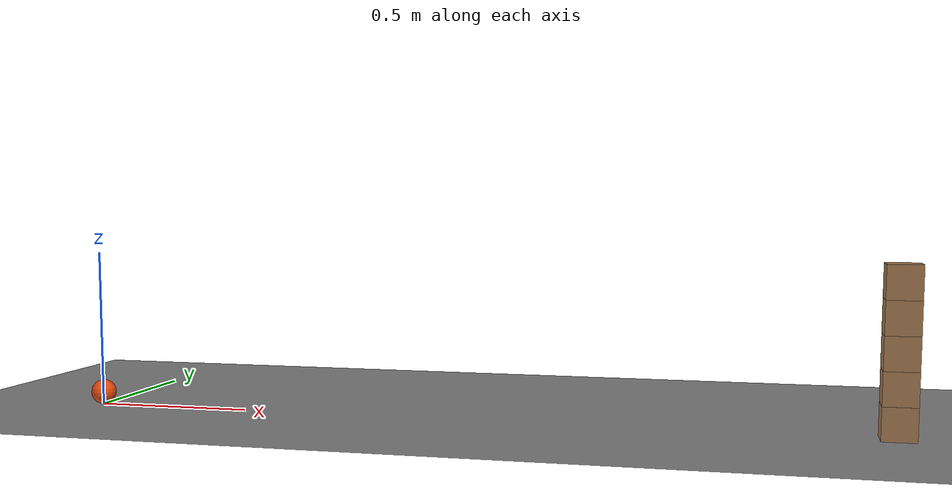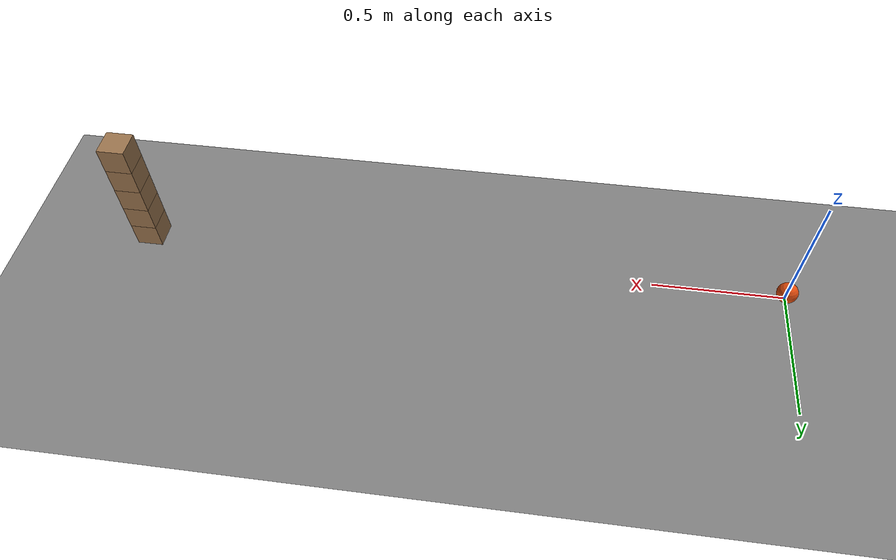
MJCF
<mujoco model="toppling_stack">
  <compiler angle="radian"/>
  <option timestep="0.002"/>
  <worldbody>
    <geom name="floor" type="plane" size="6 6 0.1" friction="0.8 0.005 0.002"/>
    <body name="block1" pos="2.5 0 0.05">
      <freejoint/>
      <geom name="block1" type="box" pos="0 0 0" size="0.05 0.05 0.05" mass="0.25" friction="0.8 0.005 0.0001" rgba="0.6 0.45 0.3 1"/>
    </body>
    <body name="block2" pos="2.5 0 0.15">
      <freejoint/>
      <geom name="block2" type="box" pos="0 0 0" size="0.05 0.05 0.05" mass="0.25" friction="0.8 0.005 0.0001" rgba="0.6 0.45 0.3 1"/>
    </body>
    <body name="block3" pos="2.5 0 0.25">
      <freejoint/>
      <geom name="block3" type="box" pos="0 0 0" size="0.05 0.05 0.05" mass="0.25" friction="0.8 0.005 0.0001" rgba="0.6 0.45 0.3 1"/>
    </body>
    <body name="block4" pos="2.5 0 0.35">
      <freejoint/>
      <geom name="block4" type="box" pos="0 0 0" size="0.05 0.05 0.05" mass="0.25" friction="0.8 0.005 0.0001" rgba="0.6 0.45 0.3 1"/>
    </body>
    <body name="block5" pos="2.5 0 0.45">
      <freejoint/>
      <geom name="block5" type="box" pos="0 0 0" size="0.05 0.05 0.05" mass="0.25" friction="0.8 0.005 0.0001" rgba="0.6 0.45 0.3 1"/>
    </body>
    <body name="ball" pos="0 0 0.04">
      <freejoint/>
      <geom name="ball" type="sphere" pos="0 0 0" size="0.04" mass="0.6" condim="6" friction="0.8 0.01 0.002" solref="0.01 0.2" rgba="0.9 0.3 0.05 1"/>
    </body>
  </worldbody>
  <keyframe>
    <key name="start" qpos="2.5 0 0.05 1 0 0 0 2.5 0 0.15 1 0 0 0 2.5 0 0.25 1 0 0 0 2.5 0 0.35 1 0 0 0 2.5 0 0.45 1 0 0 0 0 0 0.04 1 0 0 0" qvel="0 0 0 0 0 0 0 0 0 0 0 0 0 0 0 0 0 0 0 0 0 0 0 0 0 0 0 0 0 0 3 0 0 0 75 0"/>
  </keyframe>
</mujoco>
